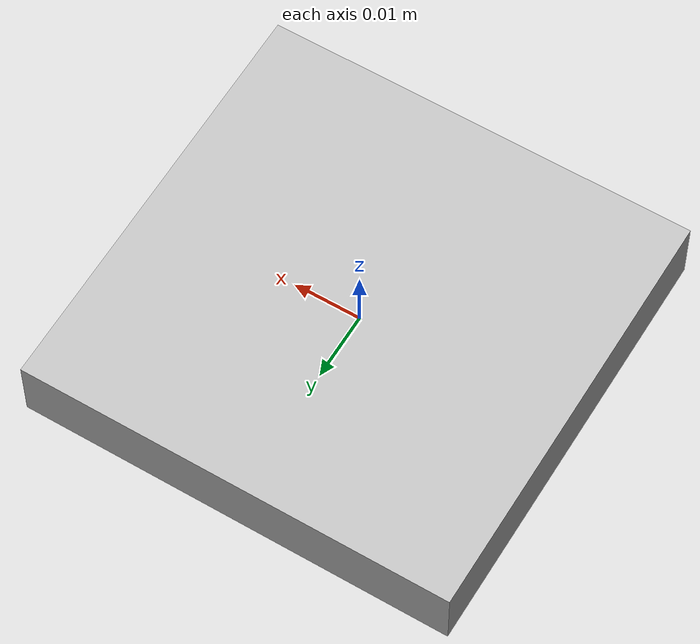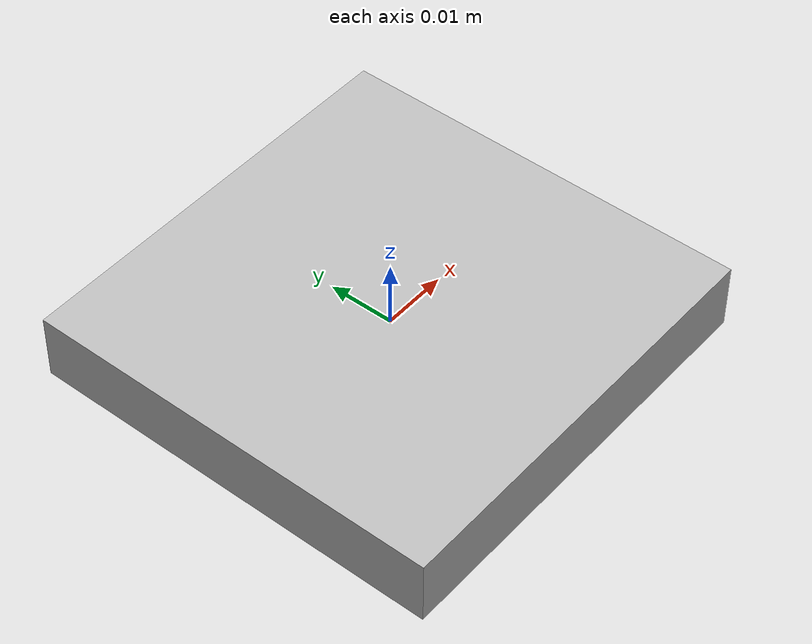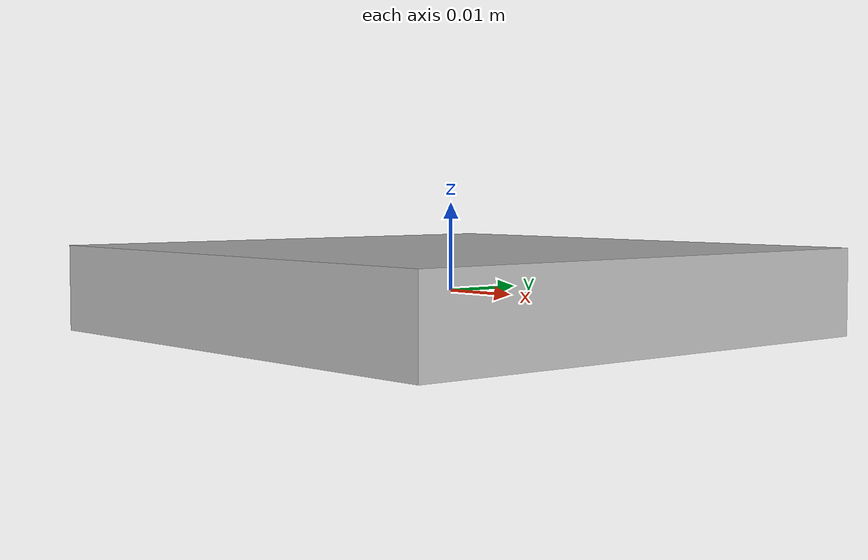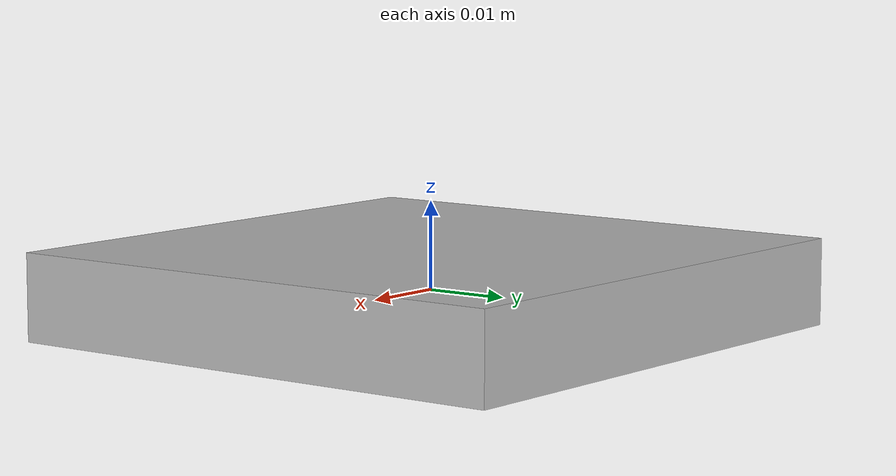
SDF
<sdf version='1.6'>
  <model name='sherd'>
    <pose frame=''>0.0 0.0 0.0 0 -0 1.57</pose>
    <link name='link'>
      <inertial>
        <mass>0.01</mass>
        <inertia>
          <ixx>0.000166667</ixx>
          <ixy>0</ixy>
          <ixz>0</ixz>
          <iyy>0.000166667</iyy>
          <iyz>0</iyz>
          <izz>0.000166667</izz>
        </inertia>
      </inertial>
      <collision name='collision'>
        <geometry>
          <box>
            <size>0.063 0.064 0.01</size>
          </box>
        </geometry>
        <max_contacts>10</max_contacts>
        <surface>
          <friction>
            <ode>
              <mu>200</mu>
              <mu2>100</mu2>
            </ode>
            <torsional>
              <ode/>
            </torsional>
          </friction>
          <contact>
            <ode>
              <min_depth>0.002</min_depth>
              <kp>100000</kp>
            </ode>
          </contact>
          <bounce/>
        </surface>
      </collision>
      <visual name='visual'>
        <geometry>
          <box>
            <size>0.063 0.064 0.01</size>
          </box>
        </geometry>
        <material>
          <script>
            <uri>model://materials/scripts</uri>
            <uri>model://materials/textures</uri>
            <name>RepeatedTexture/class45</name>
          </script>
        </material>
      </visual>
      <self_collide>0</self_collide>
      <enable_wind>0</enable_wind>
      <velocity_decay>
        <angular>0.001</angular>
      </velocity_decay>
      <kinematic>0</kinematic>
    </link>
  </model>
</sdf>
